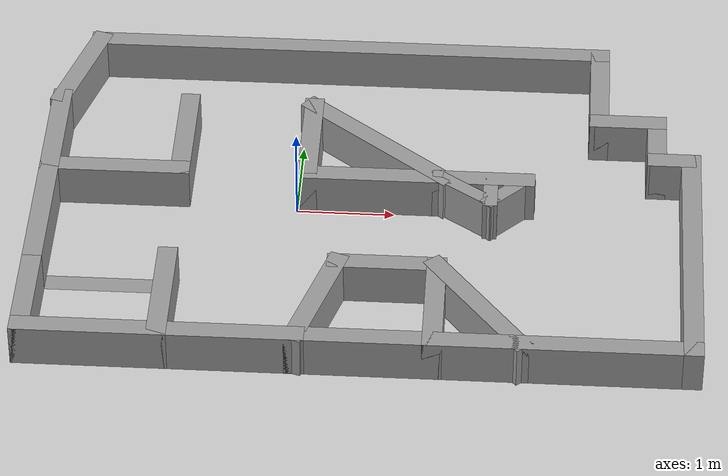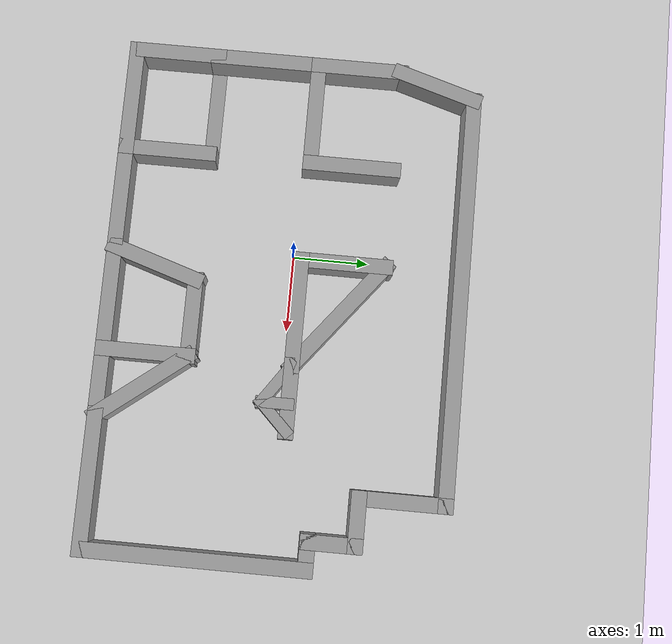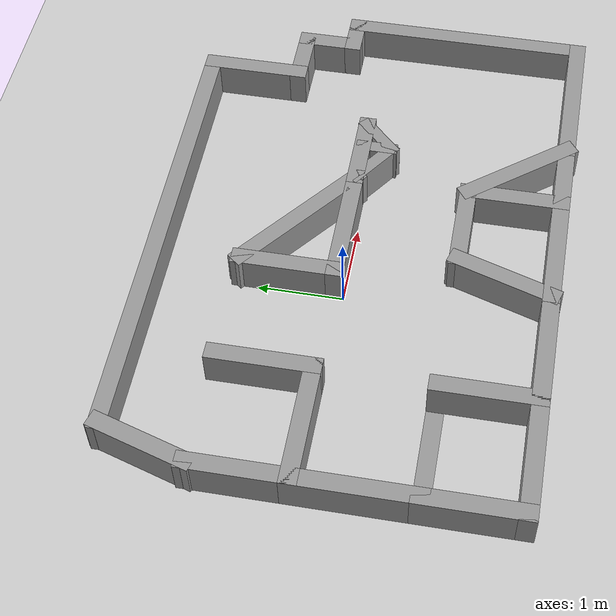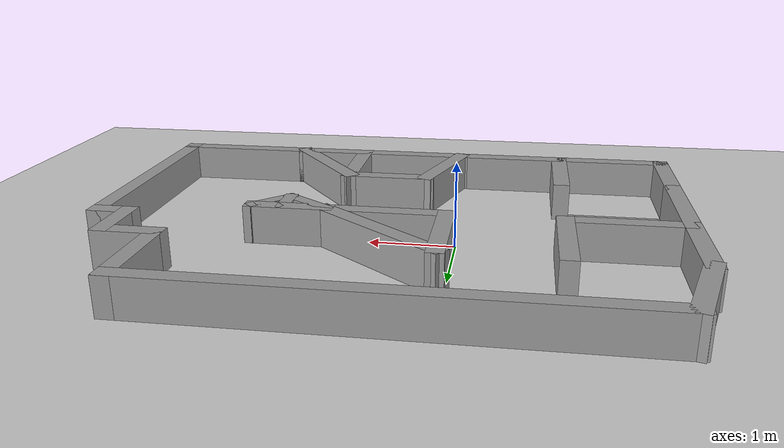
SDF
<sdf version="1.7">
 <world name="default">
  <light name="sun" type="directional">
   <pose>0 0 10 0 -0 0</pose>
   <diffuse>0.8 0.8 0.8 1</diffuse>
   <specular>0.2 0.2 0.2 1</specular>
   <attenuation>
    <range>1000</range>
    <constant>0.9</constant>
    <linear>0.01</linear>
    <quadratic>0.001</quadratic>
   </attenuation>
   <direction>-0.5 0.1 -0.9</direction>
   <spot><inner_angle>0</inner_angle><outer_angle>0</outer_angle><falloff>0</falloff></spot>
  </light>
  <model name="ground_plane">
   <static>1</static>
   <link name="link">
    <collision name="collision">
     <geometry><plane><normal>0 0 1</normal><size>100 100</size></plane></geometry>
     <surface>
      <contact><collide_bitmask>65535</collide_bitmask></contact>
      <friction><ode><mu>100</mu><mu2>50</mu2></ode></friction>
     </surface>
    </collision>
    <visual name="visual">
     <cast_shadows>0</cast_shadows>
     <geometry><plane><normal>0 0 1</normal><size>100 100</size></plane></geometry>
     <material>
      <script><uri>file://media/materials/scripts/gazebo.material</uri><name>Gazebo/Grey</name></script>
     </material>
    </visual>
   </link>
  </model>
  <gravity>0 0 -9.8</gravity>
  <magnetic_field>6e-06 2.3e-05 -4.2e-05</magnetic_field>
  <atmosphere type="adiabatic"/>
  <physics type="ode">
   <max_step_size>0.001</max_step_size>
   <real_time_factor>1</real_time_factor>
   <real_time_update_rate>0.0</real_time_update_rate>
   <max_step_size>0.003</max_step_size>
   <ode>
    <solver>
     <type>quick</type>
     <iters>150</iters>
     <precon_iters>0</precon_iters>
     <sor>1.400000</sor>
     <use_dynamic_moi_rescaling>1</use_dynamic_moi_rescaling>
    </solver>
    <constraints>
     <cfm>0.00001</cfm>
     <erp>0.2</erp>
     <contact_max_correcting_vel>2000.000000</contact_max_correcting_vel>
     <contact_surface_layer>0.01000</contact_surface_layer>
    </constraints>
   </ode>
  </physics>
  <scene><ambient>0.4 0.4 0.4 1</ambient><background>0.7 0.7 0.7 1</background><shadows>1</shadows></scene>
  <spherical_coordinates>
   <surface_model>EARTH_WGS84</surface_model>
   <latitude_deg>0</latitude_deg>
   <longitude_deg>0</longitude_deg>
   <elevation>0</elevation>
   <heading_deg>0</heading_deg>
  </spherical_coordinates>
  <model name="iros_24_3">
   <pose>0.723789 -0.071324 0 0 -0 0</pose>
   <link name="Wall_18">
    <collision name="Wall_18_Collision"><geometry><box><size>1.55 0.2 0</size></box></geometry></collision>
    <visual name="Wall_18_Visual">
     <geometry><box><size>1.55 0.2 0</size></box></geometry>
     <material>
      <script><uri>file://media/materials/scripts/gazebo.material</uri><name>Gazebo/Grey</name></script>
      <ambient>1 1 1 1</ambient>
     </material>
     <meta><layer>0</layer></meta>
    </visual>
    <pose>-2.61274 -1.16712 0 0 -0 0</pose>
   </link>
   <link name="Wall_19">
    <collision name="Wall_19_Collision">
     <geometry><box><size>1.3 0.2 0.45</size></box></geometry>
     <pose>0 0 0.225 0 -0 0</pose>
    </collision>
    <visual name="Wall_19_Visual">
     <pose>0 0 0.225 0 -0 0</pose>
     <geometry><box><size>1.3 0.2 0.45</size></box></geometry>
     <material>
      <script><uri>file://media/materials/scripts/gazebo.material</uri><name>Gazebo/Grey</name></script>
      <ambient>1 1 1 1</ambient>
     </material>
     <meta><layer>0</layer></meta>
    </visual>
    <pose>-1.93774 -1.71712 0 0 -0 -1.5708</pose>
   </link>
   <link name="Wall_21">
    <collision name="Wall_21_Collision">
     <geometry><box><size>1.55 0.2 0.45</size></box></geometry>
     <pose>0 0 0.225 0 -0 0</pose>
    </collision>
    <visual name="Wall_21_Visual">
     <pose>0 0 0.225 0 -0 0</pose>
     <geometry><box><size>1.55 0.2 0.45</size></box></geometry>
     <material>
      <script><uri>file://media/materials/scripts/gazebo.material</uri><name>Gazebo/Grey</name></script>
      <ambient>1 1 1 1</ambient>
     </material>
     <meta><layer>0</layer></meta>
    </visual>
    <pose>-1.26274 -2.26712 0 0 -0 0</pose>
   </link>
   <link name="Wall_25">
    <collision name="Wall_25_Collision">
     <geometry><box><size>1.3 0.2 0.45</size></box></geometry>
     <pose>0 0 0.225 0 -0 0</pose>
    </collision>
    <visual name="Wall_25_Visual">
     <pose>0 0 0.225 0 -0 0</pose>
     <geometry><box><size>1.3 0.2 0.45</size></box></geometry>
     <material>
      <script><uri>file://media/materials/scripts/gazebo.material</uri><name>Gazebo/Grey</name></script>
      <ambient>1 1 1 1</ambient>
     </material>
     <meta><layer>0</layer></meta>
    </visual>
    <pose>0.762259 -1.71712 0 0 -0 -1.5708</pose>
   </link>
   <link name="Wall_26">
    <collision name="Wall_26_Collision">
     <geometry><box><size>1.05 0.2 0.45</size></box></geometry>
     <pose>0 0 0.225 0 -0 0</pose>
    </collision>
    <visual name="Wall_26_Visual">
     <pose>0 0 0.225 0 -0 0</pose>
     <geometry><box><size>1.05 0.2 0.45</size></box></geometry>
     <material>
      <script><uri>file://media/materials/scripts/gazebo.material</uri><name>Gazebo/Grey</name></script>
      <ambient>1 1 1 1</ambient>
     </material>
     <meta><layer>0</layer></meta>
    </visual>
    <pose>1.18726 -2.26712 0 0 -0 0</pose>
   </link>
   <link name="Wall_27">
    <collision name="Wall_27_Collision">
     <geometry><box><size>1.59014 0.2 0.45</size></box></geometry>
     <pose>0 0 0.225 0 -0 0</pose>
    </collision>
    <visual name="Wall_27_Visual">
     <pose>0 0 0.225 0 -0 0</pose>
     <geometry><box><size>1.59014 0.2 0.45</size></box></geometry>
     <material>
      <script><uri>file://media/materials/scripts/gazebo.material</uri><name>Gazebo/Grey</name></script>
      <ambient>1 1 1 1</ambient>
     </material>
     <meta><layer>0</layer></meta>
    </visual>
    <pose>1.18726 -1.71712 0 0 -0 2.22869</pose>
   </link>
   <link name="Wall_3">
    <collision name="Wall_3_Collision">
     <geometry><box><size>1.3 0.2 0.45</size></box></geometry>
     <pose>0 0 0.225 0 -0 0</pose>
    </collision>
    <visual name="Wall_3_Visual">
     <pose>0 0 0.225 0 -0 0</pose>
     <geometry><box><size>1.3 0.2 0.45</size></box></geometry>
     <material>
      <script><uri>file://media/materials/scripts/gazebo.material</uri><name>Gazebo/Grey</name></script>
      <ambient>1 1 1 1</ambient>
     </material>
     <meta><layer>0</layer></meta>
    </visual>
    <pose>-3.28774 -1.71712 0 0 -0 1.5708</pose>
   </link>
   <link name="Wall_32">
    <collision name="Wall_32_Collision">
     <geometry><box><size>1.35434 0.2 0.45</size></box></geometry>
     <pose>0 0 0.225 0 -0 0</pose>
    </collision>
    <visual name="Wall_32_Visual">
     <pose>0 0 0.225 0 -0 0</pose>
     <geometry><box><size>1.35434 0.2 0.45</size></box></geometry>
     <material>
      <script><uri>file://media/materials/scripts/gazebo.material</uri><name>Gazebo/Grey</name></script>
      <ambient>1 1 1 1</ambient>
     </material>
     <meta><layer>0</layer></meta>
    </visual>
    <pose>-0.412741 -1.71712 0 0 -0 -1.87885</pose>
   </link>
   <link name="Wall_34">
    <collision name="Wall_34_Collision">
     <geometry><box><size>1.2 0.2 0.45</size></box></geometry>
     <pose>0 0 0.225 0 -0 0</pose>
    </collision>
    <visual name="Wall_34_Visual">
     <pose>0 0 0.225 0 -0 0</pose>
     <geometry><box><size>1.2 0.2 0.45</size></box></geometry>
     <material>
      <script><uri>file://media/materials/scripts/gazebo.material</uri><name>Gazebo/Grey</name></script>
      <ambient>1 1 1 1</ambient>
     </material>
     <meta><layer>0</layer></meta>
    </visual>
    <pose>0.262259 -1.16712 0 0 -0 0</pose>
   </link>
   <link name="Wall_4">
    <collision name="Wall_4_Collision">
     <geometry><box><size>1.55 0.2 0.45</size></box></geometry>
     <pose>0 0 0.225 0 -0 0</pose>
    </collision>
    <visual name="Wall_4_Visual">
     <pose>0 0 0.225 0 -0 0</pose>
     <geometry><box><size>1.55 0.2 0.45</size></box></geometry>
     <material>
      <script><uri>file://media/materials/scripts/gazebo.material</uri><name>Gazebo/Grey</name></script>
      <ambient>1 1 1 1</ambient>
     </material>
     <meta><layer>0</layer></meta>
    </visual>
    <pose>-3.28774 -0.492122 0 0 -0 1.5708</pose>
   </link>
   <link name="Wall_40">
    <collision name="Wall_40_Collision">
     <geometry><box><size>1.59 0.2 0.45</size></box></geometry>
     <pose>0 0 0.225 0 -0 0</pose>
    </collision>
    <visual name="Wall_40_Visual">
     <pose>0 0 0.225 0 -0 0</pose>
     <geometry><box><size>1.59 0.2 0.45</size></box></geometry>
     <material>
      <script><uri>file://media/materials/scripts/gazebo.material</uri><name>Gazebo/Grey</name></script>
      <ambient>1 1 1 1</ambient>
     </material>
     <meta><layer>0</layer></meta>
    </visual>
    <pose>0.067259 0.182878 0 0 -0 0</pose>
   </link>
   <link name="Wall_41">
    <collision name="Wall_41_Collision">
     <geometry><box><size>1.05 0.2 0.45</size></box></geometry>
     <pose>0 0 0.225 0 -0 0</pose>
    </collision>
    <visual name="Wall_41_Visual">
     <pose>0 0 0.225 0 -0 0</pose>
     <geometry><box><size>1.05 0.2 0.45</size></box></geometry>
     <material>
      <script><uri>file://media/materials/scripts/gazebo.material</uri><name>Gazebo/Grey</name></script>
      <ambient>1 1 1 1</ambient>
     </material>
     <meta><layer>0</layer></meta>
    </visual>
    <pose>1.18726 0.182878 0 0 -0 0</pose>
   </link>
   <link name="Wall_45">
    <collision name="Wall_45_Collision">
     <geometry><box><size>0.5 0.15 0.45</size></box></geometry>
     <pose>0 0 0.225 0 -0 0</pose>
    </collision>
    <visual name="Wall_45_Visual">
     <pose>0 0 0.225 0 -0 0</pose>
     <geometry><box><size>0.5 0.15 0.45</size></box></geometry>
     <material>
      <script><uri>file://media/materials/scripts/gazebo.material</uri><name>Gazebo/Grey</name></script>
      <ambient>1 1 1 1</ambient>
     </material>
     <meta><layer>0</layer></meta>
    </visual>
    <pose>1.26226 0.007878 0 0 -0 -1.5708</pose>
   </link>
   <link name="Wall_46">
    <collision name="Wall_46_Collision">
     <geometry><box><size>0.644975 0.15 0.45</size></box></geometry>
     <pose>0 0 0.225 0 -0 0</pose>
    </collision>
    <visual name="Wall_46_Visual">
     <pose>0 0 0.225 0 -0 0</pose>
     <geometry><box><size>0.644975 0.15 0.45</size></box></geometry>
     <material>
      <script><uri>file://media/materials/scripts/gazebo.material</uri><name>Gazebo/Grey</name></script>
      <ambient>1 1 1 1</ambient>
     </material>
     <meta><layer>0</layer></meta>
    </visual>
    <pose>1.43726 0.007878 0 0 -0 0.785398</pose>
   </link>
   <link name="Wall_48">
    <collision name="Wall_48_Collision">
     <geometry><box><size>0.760328 0.15 0.45</size></box></geometry>
     <pose>0 0 0.225 0 -0 0</pose>
    </collision>
    <visual name="Wall_48_Visual">
     <pose>0 0 0.225 0 -0 0</pose>
     <geometry><box><size>0.760328 0.15 0.45</size></box></geometry>
     <material>
      <script><uri>file://media/materials/scripts/gazebo.material</uri><name>Gazebo/Grey</name></script>
      <ambient>1 1 1 1</ambient>
     </material>
     <meta><layer>0</layer></meta>
    </visual>
    <pose>1.01226 0.007878 0 0 -0 2.53087</pose>
   </link>
   <link name="Wall_5">
    <collision name="Wall_5_Collision">
     <geometry><box><size>1.55 0.2 0.45</size></box></geometry>
     <pose>0 0 0.225 0 -0 0</pose>
    </collision>
    <visual name="Wall_5_Visual">
     <pose>0 0 0.225 0 -0 0</pose>
     <geometry><box><size>1.55 0.2 0.45</size></box></geometry>
     <material>
      <script><uri>file://media/materials/scripts/gazebo.material</uri><name>Gazebo/Grey</name></script>
      <ambient>1 1 1 1</ambient>
     </material>
     <meta><layer>0</layer></meta>
    </visual>
    <pose>-2.61274 0.182878 0 0 -0 0</pose>
   </link>
   <link name="Wall_54">
    <collision name="Wall_54_Collision">
     <geometry><box><size>3.05 0.2 0.45</size></box></geometry>
     <pose>0 0 0.225 0 -0 0</pose>
    </collision>
    <visual name="Wall_54_Visual">
     <pose>0 0 0.225 0 -0 0</pose>
     <geometry><box><size>3.05 0.2 0.45</size></box></geometry>
     <material>
      <script><uri>file://media/materials/scripts/gazebo.material</uri><name>Gazebo/Grey</name></script>
      <ambient>1 1 1 1</ambient>
     </material>
     <meta><layer>0</layer></meta>
    </visual>
    <pose>3.31226 -0.842122 0 0 -0 1.5708</pose>
   </link>
   <link name="Wall_55">
    <collision name="Wall_55_Collision">
     <geometry><box><size>0.55 0.2 0.45</size></box></geometry>
     <pose>0 0 0.225 0 -0 0</pose>
    </collision>
    <visual name="Wall_55_Visual">
     <pose>0 0 0.225 0 -0 0</pose>
     <geometry><box><size>0.55 0.2 0.45</size></box></geometry>
     <material>
      <script><uri>file://media/materials/scripts/gazebo.material</uri><name>Gazebo/Grey</name></script>
      <ambient>1 1 1 1</ambient>
     </material>
     <meta><layer>0</layer></meta>
    </visual>
    <pose>3.13726 0.582878 0 0 -0 3.14159</pose>
   </link>
   <link name="Wall_56">
    <collision name="Wall_56_Collision">
     <geometry><box><size>0.8 0.2 0.45</size></box></geometry>
     <pose>0 0 0.225 0 -0 0</pose>
    </collision>
    <visual name="Wall_56_Visual">
     <pose>0 0 0.225 0 -0 0</pose>
     <geometry><box><size>0.8 0.2 0.45</size></box></geometry>
     <material>
      <script><uri>file://media/materials/scripts/gazebo.material</uri><name>Gazebo/Grey</name></script>
      <ambient>1 1 1 1</ambient>
     </material>
     <meta><layer>0</layer></meta>
    </visual>
    <pose>2.96226 0.882878 0 0 -0 1.5708</pose>
   </link>
   <link name="Wall_59">
    <collision name="Wall_59_Collision">
     <geometry><box><size>0.8 0.2 0.45</size></box></geometry>
     <pose>0 0 0.225 0 -0 0</pose>
    </collision>
    <visual name="Wall_59_Visual">
     <pose>0 0 0.225 0 -0 0</pose>
     <geometry><box><size>0.8 0.2 0.45</size></box></geometry>
     <material>
      <script><uri>file://media/materials/scripts/gazebo.material</uri><name>Gazebo/Grey</name></script>
      <ambient>1 1 1 1</ambient>
     </material>
     <meta><layer>0</layer></meta>
    </visual>
    <pose>2.66226 1.18288 0 0 -0 3.14159</pose>
   </link>
   <link name="Wall_6">
    <collision name="Wall_6_Collision">
     <geometry><box><size>1.3 0.2 0.45</size></box></geometry>
     <pose>0 0 0.225 0 -0 0</pose>
    </collision>
    <visual name="Wall_6_Visual">
     <pose>0 0 0.225 0 -0 0</pose>
     <geometry><box><size>1.3 0.2 0.45</size></box></geometry>
     <material>
      <script><uri>file://media/materials/scripts/gazebo.material</uri><name>Gazebo/Grey</name></script>
      <ambient>1 1 1 1</ambient>
     </material>
     <meta><layer>0</layer></meta>
    </visual>
    <pose>-1.93774 0.732878 0 0 -0 1.5708</pose>
   </link>
   <link name="Wall_64">
    <collision name="Wall_64_Collision">
     <geometry><box><size>1.3 0.2 0.45</size></box></geometry>
     <pose>0 0 0.225 0 -0 0</pose>
    </collision>
    <visual name="Wall_64_Visual">
     <pose>0 0 0.225 0 -0 0</pose>
     <geometry><box><size>1.3 0.2 0.45</size></box></geometry>
     <material>
      <script><uri>file://media/materials/scripts/gazebo.material</uri><name>Gazebo/Grey</name></script>
      <ambient>1 1 1 1</ambient>
     </material>
     <meta><layer>0</layer></meta>
    </visual>
    <pose>2.36226 1.73288 0 0 -0 1.5708</pose>
   </link>
   <link name="Wall_65">
    <collision name="Wall_65_Collision">
     <geometry><box><size>5.55 0.2 0.45</size></box></geometry>
     <pose>0 0 0.225 0 -0 0</pose>
    </collision>
    <visual name="Wall_65_Visual">
     <pose>0 0 0.225 0 -0 0</pose>
     <geometry><box><size>5.55 0.2 0.45</size></box></geometry>
     <material>
      <script><uri>file://media/materials/scripts/gazebo.material</uri><name>Gazebo/Grey</name></script>
      <ambient>1 1 1 1</ambient>
     </material>
     <meta><layer>0</layer></meta>
    </visual>
    <pose>-0.312741 2.28288 0 0 -0 3.14159</pose>
   </link>
   <link name="Wall_70">
    <collision name="Wall_70_Collision">
     <geometry><box><size>1.3 0.2 0.45</size></box></geometry>
     <pose>0 0 0.225 0 -0 0</pose>
    </collision>
    <visual name="Wall_70_Visual">
     <pose>0 0 0.225 0 -0 0</pose>
     <geometry><box><size>1.3 0.2 0.45</size></box></geometry>
     <material>
      <script><uri>file://media/materials/scripts/gazebo.material</uri><name>Gazebo/Grey</name></script>
      <ambient>1 1 1 1</ambient>
     </material>
     <meta><layer>0</layer></meta>
    </visual>
    <pose>-0.627741 0.732878 0 0 -0 1.5708</pose>
   </link>
   <link name="Wall_71">
    <collision name="Wall_71_Collision">
     <geometry><box><size>1.9726 0.2 0.45</size></box></geometry>
     <pose>0 0 0.225 0 -0 0</pose>
    </collision>
    <visual name="Wall_71_Visual">
     <pose>0 0 0.225 0 -0 0</pose>
     <geometry><box><size>1.9726 0.2 0.45</size></box></geometry>
     <material>
      <script><uri>file://media/materials/scripts/gazebo.material</uri><name>Gazebo/Grey</name></script>
      <ambient>1 1 1 1</ambient>
     </material>
     <meta><layer>0</layer></meta>
    </visual>
    <pose>0.067259 0.732878 0 0 -0 -0.669455</pose>
   </link>
   <link name="Wall_73">
    <collision name="Wall_73_Collision">
     <geometry><box><size>1.3 0.2 0.45</size></box></geometry>
     <pose>0 0 0.225 0 -0 0</pose>
    </collision>
    <visual name="Wall_73_Visual">
     <pose>0 0 0.225 0 -0 0</pose>
     <geometry><box><size>1.3 0.2 0.45</size></box></geometry>
     <material>
      <script><uri>file://media/materials/scripts/gazebo.material</uri><name>Gazebo/Grey</name></script>
      <ambient>1 1 1 1</ambient>
     </material>
     <meta><layer>0</layer></meta>
    </visual>
    <pose>-3.28774 0.732878 0 0 -0 1.5708</pose>
   </link>
   <link name="Wall_74">
    <collision name="Wall_74_Collision">
     <geometry><box><size>1.24403 0.2 0.45</size></box></geometry>
     <pose>0 0 0.225 0 -0 0</pose>
    </collision>
    <visual name="Wall_74_Visual">
     <pose>0 0 0.225 0 -0 0</pose>
     <geometry><box><size>1.24403 0.2 0.45</size></box></geometry>
     <material>
      <script><uri>file://media/materials/scripts/gazebo.material</uri><name>Gazebo/Grey</name></script>
      <ambient>1 1 1 1</ambient>
     </material>
     <meta><layer>0</layer></meta>
    </visual>
    <pose>-3.13774 1.78288 0 0 -0 1.27934</pose>
   </link>
   <link name="Wall_78">
    <collision name="Wall_78_Collision">
     <geometry><box><size>1.55 0.2 0.45</size></box></geometry>
     <pose>0 0 0.225 0 -0 0</pose>
    </collision>
    <visual name="Wall_78_Visual">
     <pose>0 0 0.225 0 -0 0</pose>
     <geometry><box><size>1.55 0.2 0.45</size></box></geometry>
     <material>
      <script><uri>file://media/materials/scripts/gazebo.material</uri><name>Gazebo/Grey</name></script>
      <ambient>1 1 1 1</ambient>
     </material>
     <meta><layer>0</layer></meta>
    </visual>
    <pose>-2.61274 -2.26712 0 0 -0 0</pose>
   </link>
   <link name="Wall_82">
    <collision name="Wall_82_Collision">
     <geometry><box><size>1.9 0.2 0.45</size></box></geometry>
     <pose>0 0 0.225 0 -0 0</pose>
    </collision>
    <visual name="Wall_82_Visual">
     <pose>0 0 0.225 0 -0 0</pose>
     <geometry><box><size>1.9 0.2 0.45</size></box></geometry>
     <material>
      <script><uri>file://media/materials/scripts/gazebo.material</uri><name>Gazebo/Grey</name></script>
      <ambient>1 1 1 1</ambient>
     </material>
     <meta><layer>0</layer></meta>
    </visual>
    <pose>2.46226 -2.26712 0 0 -0 0</pose>
   </link>
   <link name="Wall_84">
    <collision name="Wall_84_Collision">
     <geometry><box><size>1.55 0.2 0.45</size></box></geometry>
     <pose>0 0 0.225 0 -0 0</pose>
    </collision>
    <visual name="Wall_84_Visual">
     <pose>0 0 0.225 0 -0 0</pose>
     <geometry><box><size>1.55 0.2 0.45</size></box></geometry>
     <material>
      <script><uri>file://media/materials/scripts/gazebo.material</uri><name>Gazebo/Grey</name></script>
      <ambient>1 1 1 1</ambient>
     </material>
     <meta><layer>0</layer></meta>
    </visual>
    <pose>0.087259 -2.26712 0 0 -0 0</pose>
   </link>
   <static>1</static>
  </model>
 </world>
</sdf>
